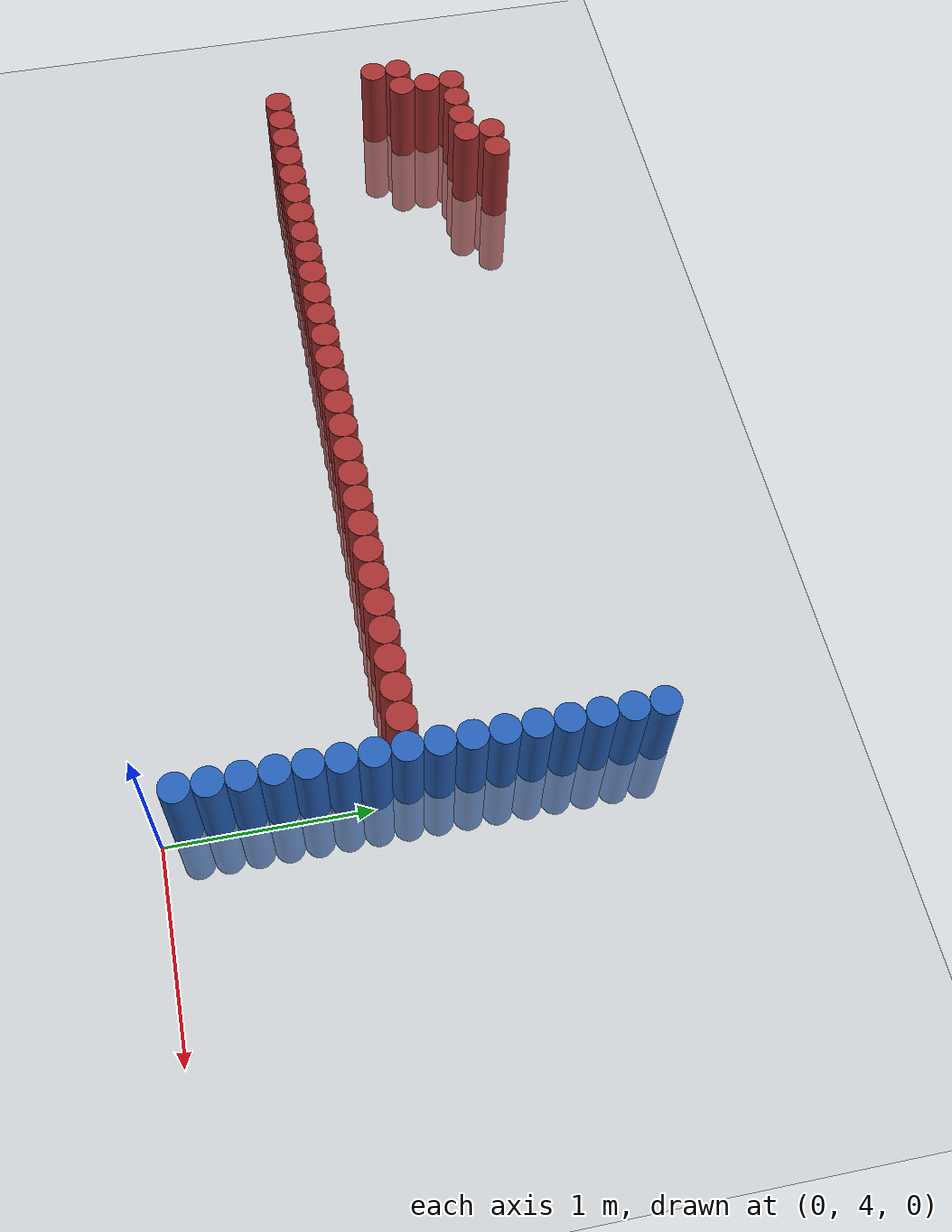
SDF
<sdf version="1.6">
 <world name="default">
  <model name="ground_plane">
   <static>1</static>
   <link name="link">
    <collision name="collision">
     <geometry><plane><normal>0 0 1</normal><size>100 100</size></plane></geometry>
     <surface><friction><ode><mu>100</mu><mu2>50</mu2></ode></friction></surface>
    </collision>
    <visual name="visual">
     <cast_shadows>0</cast_shadows>
     <geometry><plane><normal>0 0 1</normal><size>100 100</size></plane></geometry>
     <material>
      <script><uri>file://media/materials/scripts/gazebo.material</uri><name>Gazebo/Grey</name></script>
     </material>
    </visual>
   </link>
  </model>
  <model name="unit_cylinder_111">
   <static>1</static>
   <pose>-0.075000 4.125000 0.000000 0.000000 0.000000 0.000000</pose>
   <link name="link">
    <inertial>
     <mass>1</mass>
     <inertia><ixx>0.145833</ixx><ixy>0</ixy><ixz>0</ixz><iyy>0.145833</iyy><iyz>0</iyz><izz>0.125</izz></inertia>
    </inertial>
    <collision name="collision">
     <geometry><cylinder><radius>0.075000</radius><length>1</length></cylinder></geometry>
    </collision>
    <visual name="visual">
     <geometry><cylinder><radius>0.075000</radius><length>1</length></cylinder></geometry>
     <material>
      <ambient>0.152000 0.379000 0.720000 1</ambient>
      <diffuse>0.152000 0.379000 0.720000 1</diffuse>
     </material>
     <material>
      <script><name>Gazebo/Grey</name><uri>file://media/materials/scripts/gazebo.material</uri></script>
     </material>
    </visual>
   </link>
  </model>
  <model name="unit_cylinder_113">
   <static>1</static>
   <pose>-0.075000 4.275000 0.000000 0.000000 0.000000 0.000000</pose>
   <link name="link">
    <inertial>
     <mass>1</mass>
     <inertia><ixx>0.145833</ixx><ixy>0</ixy><ixz>0</ixz><iyy>0.145833</iyy><iyz>0</iyz><izz>0.125</izz></inertia>
    </inertial>
    <collision name="collision">
     <geometry><cylinder><radius>0.075000</radius><length>1</length></cylinder></geometry>
    </collision>
    <visual name="visual">
     <geometry><cylinder><radius>0.075000</radius><length>1</length></cylinder></geometry>
     <material>
      <ambient>0.152000 0.379000 0.720000 1</ambient>
      <diffuse>0.152000 0.379000 0.720000 1</diffuse>
     </material>
     <material>
      <script><name>Gazebo/Grey</name><uri>file://media/materials/scripts/gazebo.material</uri></script>
     </material>
    </visual>
   </link>
  </model>
  <model name="unit_cylinder_115">
   <static>1</static>
   <pose>-0.075000 4.425000 0.000000 0.000000 0.000000 0.000000</pose>
   <link name="link">
    <inertial>
     <mass>1</mass>
     <inertia><ixx>0.145833</ixx><ixy>0</ixy><ixz>0</ixz><iyy>0.145833</iyy><iyz>0</iyz><izz>0.125</izz></inertia>
    </inertial>
    <collision name="collision">
     <geometry><cylinder><radius>0.075000</radius><length>1</length></cylinder></geometry>
    </collision>
    <visual name="visual">
     <geometry><cylinder><radius>0.075000</radius><length>1</length></cylinder></geometry>
     <material>
      <ambient>0.152000 0.379000 0.720000 1</ambient>
      <diffuse>0.152000 0.379000 0.720000 1</diffuse>
     </material>
     <material>
      <script><name>Gazebo/Grey</name><uri>file://media/materials/scripts/gazebo.material</uri></script>
     </material>
    </visual>
   </link>
  </model>
  <model name="unit_cylinder_117">
   <static>1</static>
   <pose>-0.075000 4.575000 0.000000 0.000000 0.000000 0.000000</pose>
   <link name="link">
    <inertial>
     <mass>1</mass>
     <inertia><ixx>0.145833</ixx><ixy>0</ixy><ixz>0</ixz><iyy>0.145833</iyy><iyz>0</iyz><izz>0.125</izz></inertia>
    </inertial>
    <collision name="collision">
     <geometry><cylinder><radius>0.075000</radius><length>1</length></cylinder></geometry>
    </collision>
    <visual name="visual">
     <geometry><cylinder><radius>0.075000</radius><length>1</length></cylinder></geometry>
     <material>
      <ambient>0.152000 0.379000 0.720000 1</ambient>
      <diffuse>0.152000 0.379000 0.720000 1</diffuse>
     </material>
     <material>
      <script><name>Gazebo/Grey</name><uri>file://media/materials/scripts/gazebo.material</uri></script>
     </material>
    </visual>
   </link>
  </model>
  <model name="unit_cylinder_119">
   <static>1</static>
   <pose>-0.075000 4.725000 0.000000 0.000000 0.000000 0.000000</pose>
   <link name="link">
    <inertial>
     <mass>1</mass>
     <inertia><ixx>0.145833</ixx><ixy>0</ixy><ixz>0</ixz><iyy>0.145833</iyy><iyz>0</iyz><izz>0.125</izz></inertia>
    </inertial>
    <collision name="collision">
     <geometry><cylinder><radius>0.075000</radius><length>1</length></cylinder></geometry>
    </collision>
    <visual name="visual">
     <geometry><cylinder><radius>0.075000</radius><length>1</length></cylinder></geometry>
     <material>
      <ambient>0.152000 0.379000 0.720000 1</ambient>
      <diffuse>0.152000 0.379000 0.720000 1</diffuse>
     </material>
     <material>
      <script><name>Gazebo/Grey</name><uri>file://media/materials/scripts/gazebo.material</uri></script>
     </material>
    </visual>
   </link>
  </model>
  <model name="unit_cylinder_121">
   <static>1</static>
   <pose>-0.075000 4.875000 0.000000 0.000000 0.000000 0.000000</pose>
   <link name="link">
    <inertial>
     <mass>1</mass>
     <inertia><ixx>0.145833</ixx><ixy>0</ixy><ixz>0</ixz><iyy>0.145833</iyy><iyz>0</iyz><izz>0.125</izz></inertia>
    </inertial>
    <collision name="collision">
     <geometry><cylinder><radius>0.075000</radius><length>1</length></cylinder></geometry>
    </collision>
    <visual name="visual">
     <geometry><cylinder><radius>0.075000</radius><length>1</length></cylinder></geometry>
     <material>
      <ambient>0.152000 0.379000 0.720000 1</ambient>
      <diffuse>0.152000 0.379000 0.720000 1</diffuse>
     </material>
     <material>
      <script><name>Gazebo/Grey</name><uri>file://media/materials/scripts/gazebo.material</uri></script>
     </material>
    </visual>
   </link>
  </model>
  <model name="unit_cylinder_123">
   <static>1</static>
   <pose>-0.075000 5.025000 0.000000 0.000000 0.000000 0.000000</pose>
   <link name="link">
    <inertial>
     <mass>1</mass>
     <inertia><ixx>0.145833</ixx><ixy>0</ixy><ixz>0</ixz><iyy>0.145833</iyy><iyz>0</iyz><izz>0.125</izz></inertia>
    </inertial>
    <collision name="collision">
     <geometry><cylinder><radius>0.075000</radius><length>1</length></cylinder></geometry>
    </collision>
    <visual name="visual">
     <geometry><cylinder><radius>0.075000</radius><length>1</length></cylinder></geometry>
     <material>
      <ambient>0.152000 0.379000 0.720000 1</ambient>
      <diffuse>0.152000 0.379000 0.720000 1</diffuse>
     </material>
     <material>
      <script><name>Gazebo/Grey</name><uri>file://media/materials/scripts/gazebo.material</uri></script>
     </material>
    </visual>
   </link>
  </model>
  <model name="unit_cylinder_315">
   <static>1</static>
   <pose>-4.425000 5.775000 0.000000 0.000000 0.000000 0.000000</pose>
   <link name="link">
    <inertial>
     <mass>1</mass>
     <inertia><ixx>0.145833</ixx><ixy>0</ixy><ixz>0</ixz><iyy>0.145833</iyy><iyz>0</iyz><izz>0.125</izz></inertia>
    </inertial>
    <collision name="collision">
     <geometry><cylinder><radius>0.075000</radius><length>1</length></cylinder></geometry>
    </collision>
    <visual name="visual">
     <geometry><cylinder><radius>0.075000</radius><length>1</length></cylinder></geometry>
     <material>
      <ambient>0.648000 0.192000 0.192000 1</ambient>
      <diffuse>0.648000 0.192000 0.192000 1</diffuse>
     </material>
     <material>
      <script><name>Gazebo/Grey</name><uri>file://media/materials/scripts/gazebo.material</uri></script>
     </material>
    </visual>
   </link>
  </model>
  <model name="unit_cylinder_316">
   <static>1</static>
   <pose>-4.425000 5.925000 0.000000 0.000000 0.000000 0.000000</pose>
   <link name="link">
    <inertial>
     <mass>1</mass>
     <inertia><ixx>0.145833</ixx><ixy>0</ixy><ixz>0</ixz><iyy>0.145833</iyy><iyz>0</iyz><izz>0.125</izz></inertia>
    </inertial>
    <collision name="collision">
     <geometry><cylinder><radius>0.075000</radius><length>1</length></cylinder></geometry>
    </collision>
    <visual name="visual">
     <geometry><cylinder><radius>0.075000</radius><length>1</length></cylinder></geometry>
     <material>
      <ambient>0.648000 0.192000 0.192000 1</ambient>
      <diffuse>0.648000 0.192000 0.192000 1</diffuse>
     </material>
     <material>
      <script><name>Gazebo/Grey</name><uri>file://media/materials/scripts/gazebo.material</uri></script>
     </material>
    </visual>
   </link>
  </model>
  <model name="unit_cylinder_319">
   <static>1</static>
   <pose>-4.275000 5.175000 0.000000 0.000000 0.000000 0.000000</pose>
   <link name="link">
    <inertial>
     <mass>1</mass>
     <inertia><ixx>0.145833</ixx><ixy>0</ixy><ixz>0</ixz><iyy>0.145833</iyy><iyz>0</iyz><izz>0.125</izz></inertia>
    </inertial>
    <collision name="collision">
     <geometry><cylinder><radius>0.075000</radius><length>1</length></cylinder></geometry>
    </collision>
    <visual name="visual">
     <geometry><cylinder><radius>0.075000</radius><length>1</length></cylinder></geometry>
     <material>
      <ambient>0.648000 0.192000 0.192000 1</ambient>
      <diffuse>0.648000 0.192000 0.192000 1</diffuse>
     </material>
     <material>
      <script><name>Gazebo/Grey</name><uri>file://media/materials/scripts/gazebo.material</uri></script>
     </material>
    </visual>
   </link>
  </model>
  <model name="unit_cylinder_320">
   <static>1</static>
   <pose>-4.275000 5.925000 0.000000 0.000000 0.000000 0.000000</pose>
   <link name="link">
    <inertial>
     <mass>1</mass>
     <inertia><ixx>0.145833</ixx><ixy>0</ixy><ixz>0</ixz><iyy>0.145833</iyy><iyz>0</iyz><izz>0.125</izz></inertia>
    </inertial>
    <collision name="collision">
     <geometry><cylinder><radius>0.075000</radius><length>1</length></cylinder></geometry>
    </collision>
    <visual name="visual">
     <geometry><cylinder><radius>0.075000</radius><length>1</length></cylinder></geometry>
     <material>
      <ambient>0.648000 0.192000 0.192000 1</ambient>
      <diffuse>0.648000 0.192000 0.192000 1</diffuse>
     </material>
     <material>
      <script><name>Gazebo/Grey</name><uri>file://media/materials/scripts/gazebo.material</uri></script>
     </material>
    </visual>
   </link>
  </model>
  <model name="unit_cylinder_321">
   <static>1</static>
   <pose>-4.275000 6.075000 0.000000 0.000000 0.000000 0.000000</pose>
   <link name="link">
    <inertial>
     <mass>1</mass>
     <inertia><ixx>0.145833</ixx><ixy>0</ixy><ixz>0</ixz><iyy>0.145833</iyy><iyz>0</iyz><izz>0.125</izz></inertia>
    </inertial>
    <collision name="collision">
     <geometry><cylinder><radius>0.075000</radius><length>1</length></cylinder></geometry>
    </collision>
    <visual name="visual">
     <geometry><cylinder><radius>0.075000</radius><length>1</length></cylinder></geometry>
     <material>
      <ambient>0.648000 0.192000 0.192000 1</ambient>
      <diffuse>0.648000 0.192000 0.192000 1</diffuse>
     </material>
     <material>
      <script><name>Gazebo/Grey</name><uri>file://media/materials/scripts/gazebo.material</uri></script>
     </material>
    </visual>
   </link>
  </model>
  <model name="unit_cylinder_322">
   <static>1</static>
   <pose>-4.275000 6.225000 0.000000 0.000000 0.000000 0.000000</pose>
   <link name="link">
    <inertial>
     <mass>1</mass>
     <inertia><ixx>0.145833</ixx><ixy>0</ixy><ixz>0</ixz><iyy>0.145833</iyy><iyz>0</iyz><izz>0.125</izz></inertia>
    </inertial>
    <collision name="collision">
     <geometry><cylinder><radius>0.075000</radius><length>1</length></cylinder></geometry>
    </collision>
    <visual name="visual">
     <geometry><cylinder><radius>0.075000</radius><length>1</length></cylinder></geometry>
     <material>
      <ambient>0.648000 0.192000 0.192000 1</ambient>
      <diffuse>0.648000 0.192000 0.192000 1</diffuse>
     </material>
     <material>
      <script><name>Gazebo/Grey</name><uri>file://media/materials/scripts/gazebo.material</uri></script>
     </material>
    </visual>
   </link>
  </model>
  <model name="unit_cylinder_324">
   <static>1</static>
   <pose>-4.125000 5.175000 0.000000 0.000000 0.000000 0.000000</pose>
   <link name="link">
    <inertial>
     <mass>1</mass>
     <inertia><ixx>0.145833</ixx><ixy>0</ixy><ixz>0</ixz><iyy>0.145833</iyy><iyz>0</iyz><izz>0.125</izz></inertia>
    </inertial>
    <collision name="collision">
     <geometry><cylinder><radius>0.075000</radius><length>1</length></cylinder></geometry>
    </collision>
    <visual name="visual">
     <geometry><cylinder><radius>0.075000</radius><length>1</length></cylinder></geometry>
     <material>
      <ambient>0.648000 0.192000 0.192000 1</ambient>
      <diffuse>0.648000 0.192000 0.192000 1</diffuse>
     </material>
     <material>
      <script><name>Gazebo/Grey</name><uri>file://media/materials/scripts/gazebo.material</uri></script>
     </material>
    </visual>
   </link>
  </model>
  <model name="unit_cylinder_325">
   <static>1</static>
   <pose>-4.125000 6.225000 0.000000 0.000000 0.000000 0.000000</pose>
   <link name="link">
    <inertial>
     <mass>1</mass>
     <inertia><ixx>0.145833</ixx><ixy>0</ixy><ixz>0</ixz><iyy>0.145833</iyy><iyz>0</iyz><izz>0.125</izz></inertia>
    </inertial>
    <collision name="collision">
     <geometry><cylinder><radius>0.075000</radius><length>1</length></cylinder></geometry>
    </collision>
    <visual name="visual">
     <geometry><cylinder><radius>0.075000</radius><length>1</length></cylinder></geometry>
     <material>
      <ambient>0.648000 0.192000 0.192000 1</ambient>
      <diffuse>0.648000 0.192000 0.192000 1</diffuse>
     </material>
     <material>
      <script><name>Gazebo/Grey</name><uri>file://media/materials/scripts/gazebo.material</uri></script>
     </material>
    </visual>
   </link>
  </model>
  <model name="unit_cylinder_327">
   <static>1</static>
   <pose>-3.975000 5.175000 0.000000 0.000000 0.000000 0.000000</pose>
   <link name="link">
    <inertial>
     <mass>1</mass>
     <inertia><ixx>0.145833</ixx><ixy>0</ixy><ixz>0</ixz><iyy>0.145833</iyy><iyz>0</iyz><izz>0.125</izz></inertia>
    </inertial>
    <collision name="collision">
     <geometry><cylinder><radius>0.075000</radius><length>1</length></cylinder></geometry>
    </collision>
    <visual name="visual">
     <geometry><cylinder><radius>0.075000</radius><length>1</length></cylinder></geometry>
     <material>
      <ambient>0.648000 0.192000 0.192000 1</ambient>
      <diffuse>0.648000 0.192000 0.192000 1</diffuse>
     </material>
     <material>
      <script><name>Gazebo/Grey</name><uri>file://media/materials/scripts/gazebo.material</uri></script>
     </material>
    </visual>
   </link>
  </model>
  <model name="unit_cylinder_328">
   <static>1</static>
   <pose>-3.975000 6.225000 0.000000 0.000000 0.000000 0.000000</pose>
   <link name="link">
    <inertial>
     <mass>1</mass>
     <inertia><ixx>0.145833</ixx><ixy>0</ixy><ixz>0</ixz><iyy>0.145833</iyy><iyz>0</iyz><izz>0.125</izz></inertia>
    </inertial>
    <collision name="collision">
     <geometry><cylinder><radius>0.075000</radius><length>1</length></cylinder></geometry>
    </collision>
    <visual name="visual">
     <geometry><cylinder><radius>0.075000</radius><length>1</length></cylinder></geometry>
     <material>
      <ambient>0.648000 0.192000 0.192000 1</ambient>
      <diffuse>0.648000 0.192000 0.192000 1</diffuse>
     </material>
     <material>
      <script><name>Gazebo/Grey</name><uri>file://media/materials/scripts/gazebo.material</uri></script>
     </material>
    </visual>
   </link>
  </model>
  <model name="unit_cylinder_331">
   <static>1</static>
   <pose>-3.825000 5.175000 0.000000 0.000000 0.000000 0.000000</pose>
   <link name="link">
    <inertial>
     <mass>1</mass>
     <inertia><ixx>0.145833</ixx><ixy>0</ixy><ixz>0</ixz><iyy>0.145833</iyy><iyz>0</iyz><izz>0.125</izz></inertia>
    </inertial>
    <collision name="collision">
     <geometry><cylinder><radius>0.075000</radius><length>1</length></cylinder></geometry>
    </collision>
    <visual name="visual">
     <geometry><cylinder><radius>0.075000</radius><length>1</length></cylinder></geometry>
     <material>
      <ambient>0.648000 0.192000 0.192000 1</ambient>
      <diffuse>0.648000 0.192000 0.192000 1</diffuse>
     </material>
     <material>
      <script><name>Gazebo/Grey</name><uri>file://media/materials/scripts/gazebo.material</uri></script>
     </material>
    </visual>
   </link>
  </model>
  <model name="unit_cylinder_332">
   <static>1</static>
   <pose>-3.825000 6.225000 0.000000 0.000000 0.000000 0.000000</pose>
   <link name="link">
    <inertial>
     <mass>1</mass>
     <inertia><ixx>0.145833</ixx><ixy>0</ixy><ixz>0</ixz><iyy>0.145833</iyy><iyz>0</iyz><izz>0.125</izz></inertia>
    </inertial>
    <collision name="collision">
     <geometry><cylinder><radius>0.075000</radius><length>1</length></cylinder></geometry>
    </collision>
    <visual name="visual">
     <geometry><cylinder><radius>0.075000</radius><length>1</length></cylinder></geometry>
     <material>
      <ambient>0.648000 0.192000 0.192000 1</ambient>
      <diffuse>0.648000 0.192000 0.192000 1</diffuse>
     </material>
     <material>
      <script><name>Gazebo/Grey</name><uri>file://media/materials/scripts/gazebo.material</uri></script>
     </material>
    </visual>
   </link>
  </model>
  <model name="unit_cylinder_333">
   <static>1</static>
   <pose>-3.825000 6.375000 0.000000 0.000000 0.000000 0.000000</pose>
   <link name="link">
    <inertial>
     <mass>1</mass>
     <inertia><ixx>0.145833</ixx><ixy>0</ixy><ixz>0</ixz><iyy>0.145833</iyy><iyz>0</iyz><izz>0.125</izz></inertia>
    </inertial>
    <collision name="collision">
     <geometry><cylinder><radius>0.075000</radius><length>1</length></cylinder></geometry>
    </collision>
    <visual name="visual">
     <geometry><cylinder><radius>0.075000</radius><length>1</length></cylinder></geometry>
     <material>
      <ambient>0.648000 0.192000 0.192000 1</ambient>
      <diffuse>0.648000 0.192000 0.192000 1</diffuse>
     </material>
     <material>
      <script><name>Gazebo/Grey</name><uri>file://media/materials/scripts/gazebo.material</uri></script>
     </material>
    </visual>
   </link>
  </model>
  <model name="unit_cylinder_336">
   <static>1</static>
   <pose>-3.675000 5.175000 0.000000 0.000000 0.000000 0.000000</pose>
   <link name="link">
    <inertial>
     <mass>1</mass>
     <inertia><ixx>0.145833</ixx><ixy>0</ixy><ixz>0</ixz><iyy>0.145833</iyy><iyz>0</iyz><izz>0.125</izz></inertia>
    </inertial>
    <collision name="collision">
     <geometry><cylinder><radius>0.075000</radius><length>1</length></cylinder></geometry>
    </collision>
    <visual name="visual">
     <geometry><cylinder><radius>0.075000</radius><length>1</length></cylinder></geometry>
     <material>
      <ambient>0.648000 0.192000 0.192000 1</ambient>
      <diffuse>0.648000 0.192000 0.192000 1</diffuse>
     </material>
     <material>
      <script><name>Gazebo/Grey</name><uri>file://media/materials/scripts/gazebo.material</uri></script>
     </material>
    </visual>
   </link>
  </model>
  <model name="unit_cylinder_337">
   <static>1</static>
   <pose>-3.675000 6.375000 0.000000 0.000000 0.000000 0.000000</pose>
   <link name="link">
    <inertial>
     <mass>1</mass>
     <inertia><ixx>0.145833</ixx><ixy>0</ixy><ixz>0</ixz><iyy>0.145833</iyy><iyz>0</iyz><izz>0.125</izz></inertia>
    </inertial>
    <collision name="collision">
     <geometry><cylinder><radius>0.075000</radius><length>1</length></cylinder></geometry>
    </collision>
    <visual name="visual">
     <geometry><cylinder><radius>0.075000</radius><length>1</length></cylinder></geometry>
     <material>
      <ambient>0.648000 0.192000 0.192000 1</ambient>
      <diffuse>0.648000 0.192000 0.192000 1</diffuse>
     </material>
     <material>
      <script><name>Gazebo/Grey</name><uri>file://media/materials/scripts/gazebo.material</uri></script>
     </material>
    </visual>
   </link>
  </model>
  <model name="unit_cylinder_339">
   <static>1</static>
   <pose>-3.525000 5.175000 0.000000 0.000000 0.000000 0.000000</pose>
   <link name="link">
    <inertial>
     <mass>1</mass>
     <inertia><ixx>0.145833</ixx><ixy>0</ixy><ixz>0</ixz><iyy>0.145833</iyy><iyz>0</iyz><izz>0.125</izz></inertia>
    </inertial>
    <collision name="collision">
     <geometry><cylinder><radius>0.075000</radius><length>1</length></cylinder></geometry>
    </collision>
    <visual name="visual">
     <geometry><cylinder><radius>0.075000</radius><length>1</length></cylinder></geometry>
     <material>
      <ambient>0.648000 0.192000 0.192000 1</ambient>
      <diffuse>0.648000 0.192000 0.192000 1</diffuse>
     </material>
     <material>
      <script><name>Gazebo/Grey</name><uri>file://media/materials/scripts/gazebo.material</uri></script>
     </material>
    </visual>
   </link>
  </model>
  <model name="unit_cylinder_341">
   <static>1</static>
   <pose>-3.375000 5.175000 0.000000 0.000000 0.000000 0.000000</pose>
   <link name="link">
    <inertial>
     <mass>1</mass>
     <inertia><ixx>0.145833</ixx><ixy>0</ixy><ixz>0</ixz><iyy>0.145833</iyy><iyz>0</iyz><izz>0.125</izz></inertia>
    </inertial>
    <collision name="collision">
     <geometry><cylinder><radius>0.075000</radius><length>1</length></cylinder></geometry>
    </collision>
    <visual name="visual">
     <geometry><cylinder><radius>0.075000</radius><length>1</length></cylinder></geometry>
     <material>
      <ambient>0.648000 0.192000 0.192000 1</ambient>
      <diffuse>0.648000 0.192000 0.192000 1</diffuse>
     </material>
     <material>
      <script><name>Gazebo/Grey</name><uri>file://media/materials/scripts/gazebo.material</uri></script>
     </material>
    </visual>
   </link>
  </model>
  <model name="unit_cylinder_344">
   <static>1</static>
   <pose>-3.225000 5.175000 0.000000 0.000000 0.000000 0.000000</pose>
   <link name="link">
    <inertial>
     <mass>1</mass>
     <inertia><ixx>0.145833</ixx><ixy>0</ixy><ixz>0</ixz><iyy>0.145833</iyy><iyz>0</iyz><izz>0.125</izz></inertia>
    </inertial>
    <collision name="collision">
     <geometry><cylinder><radius>0.075000</radius><length>1</length></cylinder></geometry>
    </collision>
    <visual name="visual">
     <geometry><cylinder><radius>0.075000</radius><length>1</length></cylinder></geometry>
     <material>
      <ambient>0.648000 0.192000 0.192000 1</ambient>
      <diffuse>0.648000 0.192000 0.192000 1</diffuse>
     </material>
     <material>
      <script><name>Gazebo/Grey</name><uri>file://media/materials/scripts/gazebo.material</uri></script>
     </material>
    </visual>
   </link>
  </model>
  <model name="unit_cylinder_355">
   <static>1</static>
   <pose>-3.075000 5.175000 0.000000 0.000000 0.000000 0.000000</pose>
   <link name="link">
    <inertial>
     <mass>1</mass>
     <inertia><ixx>0.145833</ixx><ixy>0</ixy><ixz>0</ixz><iyy>0.145833</iyy><iyz>0</iyz><izz>0.125</izz></inertia>
    </inertial>
    <collision name="collision">
     <geometry><cylinder><radius>0.075000</radius><length>1</length></cylinder></geometry>
    </collision>
    <visual name="visual">
     <geometry><cylinder><radius>0.075000</radius><length>1</length></cylinder></geometry>
     <material>
      <ambient>0.648000 0.192000 0.192000 1</ambient>
      <diffuse>0.648000 0.192000 0.192000 1</diffuse>
     </material>
     <material>
      <script><name>Gazebo/Grey</name><uri>file://media/materials/scripts/gazebo.material</uri></script>
     </material>
    </visual>
   </link>
  </model>
  <model name="unit_cylinder_357">
   <static>1</static>
   <pose>-2.925000 5.175000 0.000000 0.000000 0.000000 0.000000</pose>
   <link name="link">
    <inertial>
     <mass>1</mass>
     <inertia><ixx>0.145833</ixx><ixy>0</ixy><ixz>0</ixz><iyy>0.145833</iyy><iyz>0</iyz><izz>0.125</izz></inertia>
    </inertial>
    <collision name="collision">
     <geometry><cylinder><radius>0.075000</radius><length>1</length></cylinder></geometry>
    </collision>
    <visual name="visual">
     <geometry><cylinder><radius>0.075000</radius><length>1</length></cylinder></geometry>
     <material>
      <ambient>0.648000 0.192000 0.192000 1</ambient>
      <diffuse>0.648000 0.192000 0.192000 1</diffuse>
     </material>
     <material>
      <script><name>Gazebo/Grey</name><uri>file://media/materials/scripts/gazebo.material</uri></script>
     </material>
    </visual>
   </link>
  </model>
  <model name="unit_cylinder_359">
   <static>1</static>
   <pose>-2.775000 5.175000 0.000000 0.000000 0.000000 0.000000</pose>
   <link name="link">
    <inertial>
     <mass>1</mass>
     <inertia><ixx>0.145833</ixx><ixy>0</ixy><ixz>0</ixz><iyy>0.145833</iyy><iyz>0</iyz><izz>0.125</izz></inertia>
    </inertial>
    <collision name="collision">
     <geometry><cylinder><radius>0.075000</radius><length>1</length></cylinder></geometry>
    </collision>
    <visual name="visual">
     <geometry><cylinder><radius>0.075000</radius><length>1</length></cylinder></geometry>
     <material>
      <ambient>0.648000 0.192000 0.192000 1</ambient>
      <diffuse>0.648000 0.192000 0.192000 1</diffuse>
     </material>
     <material>
      <script><name>Gazebo/Grey</name><uri>file://media/materials/scripts/gazebo.material</uri></script>
     </material>
    </visual>
   </link>
  </model>
  <model name="unit_cylinder_361">
   <static>1</static>
   <pose>-2.625000 5.175000 0.000000 0.000000 0.000000 0.000000</pose>
   <link name="link">
    <inertial>
     <mass>1</mass>
     <inertia><ixx>0.145833</ixx><ixy>0</ixy><ixz>0</ixz><iyy>0.145833</iyy><iyz>0</iyz><izz>0.125</izz></inertia>
    </inertial>
    <collision name="collision">
     <geometry><cylinder><radius>0.075000</radius><length>1</length></cylinder></geometry>
    </collision>
    <visual name="visual">
     <geometry><cylinder><radius>0.075000</radius><length>1</length></cylinder></geometry>
     <material>
      <ambient>0.648000 0.192000 0.192000 1</ambient>
      <diffuse>0.648000 0.192000 0.192000 1</diffuse>
     </material>
     <material>
      <script><name>Gazebo/Grey</name><uri>file://media/materials/scripts/gazebo.material</uri></script>
     </material>
    </visual>
   </link>
  </model>
  <model name="unit_cylinder_363">
   <static>1</static>
   <pose>-2.475000 5.175000 0.000000 0.000000 0.000000 0.000000</pose>
   <link name="link">
    <inertial>
     <mass>1</mass>
     <inertia><ixx>0.145833</ixx><ixy>0</ixy><ixz>0</ixz><iyy>0.145833</iyy><iyz>0</iyz><izz>0.125</izz></inertia>
    </inertial>
    <collision name="collision">
     <geometry><cylinder><radius>0.075000</radius><length>1</length></cylinder></geometry>
    </collision>
    <visual name="visual">
     <geometry><cylinder><radius>0.075000</radius><length>1</length></cylinder></geometry>
     <material>
      <ambient>0.648000 0.192000 0.192000 1</ambient>
      <diffuse>0.648000 0.192000 0.192000 1</diffuse>
     </material>
     <material>
      <script><name>Gazebo/Grey</name><uri>file://media/materials/scripts/gazebo.material</uri></script>
     </material>
    </visual>
   </link>
  </model>
  <model name="unit_cylinder_375">
   <static>1</static>
   <pose>-2.325000 5.175000 0.000000 0.000000 0.000000 0.000000</pose>
   <link name="link">
    <inertial>
     <mass>1</mass>
     <inertia><ixx>0.145833</ixx><ixy>0</ixy><ixz>0</ixz><iyy>0.145833</iyy><iyz>0</iyz><izz>0.125</izz></inertia>
    </inertial>
    <collision name="collision">
     <geometry><cylinder><radius>0.075000</radius><length>1</length></cylinder></geometry>
    </collision>
    <visual name="visual">
     <geometry><cylinder><radius>0.075000</radius><length>1</length></cylinder></geometry>
     <material>
      <ambient>0.648000 0.192000 0.192000 1</ambient>
      <diffuse>0.648000 0.192000 0.192000 1</diffuse>
     </material>
     <material>
      <script><name>Gazebo/Grey</name><uri>file://media/materials/scripts/gazebo.material</uri></script>
     </material>
    </visual>
   </link>
  </model>
  <model name="unit_cylinder_377">
   <static>1</static>
   <pose>-2.175000 5.175000 0.000000 0.000000 0.000000 0.000000</pose>
   <link name="link">
    <inertial>
     <mass>1</mass>
     <inertia><ixx>0.145833</ixx><ixy>0</ixy><ixz>0</ixz><iyy>0.145833</iyy><iyz>0</iyz><izz>0.125</izz></inertia>
    </inertial>
    <collision name="collision">
     <geometry><cylinder><radius>0.075000</radius><length>1</length></cylinder></geometry>
    </collision>
    <visual name="visual">
     <geometry><cylinder><radius>0.075000</radius><length>1</length></cylinder></geometry>
     <material>
      <ambient>0.648000 0.192000 0.192000 1</ambient>
      <diffuse>0.648000 0.192000 0.192000 1</diffuse>
     </material>
     <material>
      <script><name>Gazebo/Grey</name><uri>file://media/materials/scripts/gazebo.material</uri></script>
     </material>
    </visual>
   </link>
  </model>
  <model name="unit_cylinder_379">
   <static>1</static>
   <pose>-2.025000 5.175000 0.000000 0.000000 0.000000 0.000000</pose>
   <link name="link">
    <inertial>
     <mass>1</mass>
     <inertia><ixx>0.145833</ixx><ixy>0</ixy><ixz>0</ixz><iyy>0.145833</iyy><iyz>0</iyz><izz>0.125</izz></inertia>
    </inertial>
    <collision name="collision">
     <geometry><cylinder><radius>0.075000</radius><length>1</length></cylinder></geometry>
    </collision>
    <visual name="visual">
     <geometry><cylinder><radius>0.075000</radius><length>1</length></cylinder></geometry>
     <material>
      <ambient>0.648000 0.192000 0.192000 1</ambient>
      <diffuse>0.648000 0.192000 0.192000 1</diffuse>
     </material>
     <material>
      <script><name>Gazebo/Grey</name><uri>file://media/materials/scripts/gazebo.material</uri></script>
     </material>
    </visual>
   </link>
  </model>
  <model name="unit_cylinder_381">
   <static>1</static>
   <pose>-1.875000 5.175000 0.000000 0.000000 0.000000 0.000000</pose>
   <link name="link">
    <inertial>
     <mass>1</mass>
     <inertia><ixx>0.145833</ixx><ixy>0</ixy><ixz>0</ixz><iyy>0.145833</iyy><iyz>0</iyz><izz>0.125</izz></inertia>
    </inertial>
    <collision name="collision">
     <geometry><cylinder><radius>0.075000</radius><length>1</length></cylinder></geometry>
    </collision>
    <visual name="visual">
     <geometry><cylinder><radius>0.075000</radius><length>1</length></cylinder></geometry>
     <material>
      <ambient>0.648000 0.192000 0.192000 1</ambient>
      <diffuse>0.648000 0.192000 0.192000 1</diffuse>
     </material>
     <material>
      <script><name>Gazebo/Grey</name><uri>file://media/materials/scripts/gazebo.material</uri></script>
     </material>
    </visual>
   </link>
  </model>
  <model name="unit_cylinder_383">
   <static>1</static>
   <pose>-1.725000 5.175000 0.000000 0.000000 0.000000 0.000000</pose>
   <link name="link">
    <inertial>
     <mass>1</mass>
     <inertia><ixx>0.145833</ixx><ixy>0</ixy><ixz>0</ixz><iyy>0.145833</iyy><iyz>0</iyz><izz>0.125</izz></inertia>
    </inertial>
    <collision name="collision">
     <geometry><cylinder><radius>0.075000</radius><length>1</length></cylinder></geometry>
    </collision>
    <visual name="visual">
     <geometry><cylinder><radius>0.075000</radius><length>1</length></cylinder></geometry>
     <material>
      <ambient>0.648000 0.192000 0.192000 1</ambient>
      <diffuse>0.648000 0.192000 0.192000 1</diffuse>
     </material>
     <material>
      <script><name>Gazebo/Grey</name><uri>file://media/materials/scripts/gazebo.material</uri></script>
     </material>
    </visual>
   </link>
  </model>
  <model name="unit_cylinder_385">
   <static>1</static>
   <pose>-1.575000 5.175000 0.000000 0.000000 0.000000 0.000000</pose>
   <link name="link">
    <inertial>
     <mass>1</mass>
     <inertia><ixx>0.145833</ixx><ixy>0</ixy><ixz>0</ixz><iyy>0.145833</iyy><iyz>0</iyz><izz>0.125</izz></inertia>
    </inertial>
    <collision name="collision">
     <geometry><cylinder><radius>0.075000</radius><length>1</length></cylinder></geometry>
    </collision>
    <visual name="visual">
     <geometry><cylinder><radius>0.075000</radius><length>1</length></cylinder></geometry>
     <material>
      <ambient>0.648000 0.192000 0.192000 1</ambient>
      <diffuse>0.648000 0.192000 0.192000 1</diffuse>
     </material>
     <material>
      <script><name>Gazebo/Grey</name><uri>file://media/materials/scripts/gazebo.material</uri></script>
     </material>
    </visual>
   </link>
  </model>
  <model name="unit_cylinder_387">
   <static>1</static>
   <pose>-1.425000 5.175000 0.000000 0.000000 0.000000 0.000000</pose>
   <link name="link">
    <inertial>
     <mass>1</mass>
     <inertia><ixx>0.145833</ixx><ixy>0</ixy><ixz>0</ixz><iyy>0.145833</iyy><iyz>0</iyz><izz>0.125</izz></inertia>
    </inertial>
    <collision name="collision">
     <geometry><cylinder><radius>0.075000</radius><length>1</length></cylinder></geometry>
    </collision>
    <visual name="visual">
     <geometry><cylinder><radius>0.075000</radius><length>1</length></cylinder></geometry>
     <material>
      <ambient>0.648000 0.192000 0.192000 1</ambient>
      <diffuse>0.648000 0.192000 0.192000 1</diffuse>
     </material>
     <material>
      <script><name>Gazebo/Grey</name><uri>file://media/materials/scripts/gazebo.material</uri></script>
     </material>
    </visual>
   </link>
  </model>
  <model name="unit_cylinder_389">
   <static>1</static>
   <pose>-1.275000 5.175000 0.000000 0.000000 0.000000 0.000000</pose>
   <link name="link">
    <inertial>
     <mass>1</mass>
     <inertia><ixx>0.145833</ixx><ixy>0</ixy><ixz>0</ixz><iyy>0.145833</iyy><iyz>0</iyz><izz>0.125</izz></inertia>
    </inertial>
    <collision name="collision">
     <geometry><cylinder><radius>0.075000</radius><length>1</length></cylinder></geometry>
    </collision>
    <visual name="visual">
     <geometry><cylinder><radius>0.075000</radius><length>1</length></cylinder></geometry>
     <material>
      <ambient>0.648000 0.192000 0.192000 1</ambient>
      <diffuse>0.648000 0.192000 0.192000 1</diffuse>
     </material>
     <material>
      <script><name>Gazebo/Grey</name><uri>file://media/materials/scripts/gazebo.material</uri></script>
     </material>
    </visual>
   </link>
  </model>
  <model name="unit_cylinder_391">
   <static>1</static>
   <pose>-1.125000 5.175000 0.000000 0.000000 0.000000 0.000000</pose>
   <link name="link">
    <inertial>
     <mass>1</mass>
     <inertia><ixx>0.145833</ixx><ixy>0</ixy><ixz>0</ixz><iyy>0.145833</iyy><iyz>0</iyz><izz>0.125</izz></inertia>
    </inertial>
    <collision name="collision">
     <geometry><cylinder><radius>0.075000</radius><length>1</length></cylinder></geometry>
    </collision>
    <visual name="visual">
     <geometry><cylinder><radius>0.075000</radius><length>1</length></cylinder></geometry>
     <material>
      <ambient>0.648000 0.192000 0.192000 1</ambient>
      <diffuse>0.648000 0.192000 0.192000 1</diffuse>
     </material>
     <material>
      <script><name>Gazebo/Grey</name><uri>file://media/materials/scripts/gazebo.material</uri></script>
     </material>
    </visual>
   </link>
  </model>
  <model name="unit_cylinder_393">
   <static>1</static>
   <pose>-0.975000 5.175000 0.000000 0.000000 0.000000 0.000000</pose>
   <link name="link">
    <inertial>
     <mass>1</mass>
     <inertia><ixx>0.145833</ixx><ixy>0</ixy><ixz>0</ixz><iyy>0.145833</iyy><iyz>0</iyz><izz>0.125</izz></inertia>
    </inertial>
    <collision name="collision">
     <geometry><cylinder><radius>0.075000</radius><length>1</length></cylinder></geometry>
    </collision>
    <visual name="visual">
     <geometry><cylinder><radius>0.075000</radius><length>1</length></cylinder></geometry>
     <material>
      <ambient>0.648000 0.192000 0.192000 1</ambient>
      <diffuse>0.648000 0.192000 0.192000 1</diffuse>
     </material>
     <material>
      <script><name>Gazebo/Grey</name><uri>file://media/materials/scripts/gazebo.material</uri></script>
     </material>
    </visual>
   </link>
  </model>
  <model name="unit_cylinder_395">
   <static>1</static>
   <pose>-0.825000 5.175000 0.000000 0.000000 0.000000 0.000000</pose>
   <link name="link">
    <inertial>
     <mass>1</mass>
     <inertia><ixx>0.145833</ixx><ixy>0</ixy><ixz>0</ixz><iyy>0.145833</iyy><iyz>0</iyz><izz>0.125</izz></inertia>
    </inertial>
    <collision name="collision">
     <geometry><cylinder><radius>0.075000</radius><length>1</length></cylinder></geometry>
    </collision>
    <visual name="visual">
     <geometry><cylinder><radius>0.075000</radius><length>1</length></cylinder></geometry>
     <material>
      <ambient>0.648000 0.192000 0.192000 1</ambient>
      <diffuse>0.648000 0.192000 0.192000 1</diffuse>
     </material>
     <material>
      <script><name>Gazebo/Grey</name><uri>file://media/materials/scripts/gazebo.material</uri></script>
     </material>
    </visual>
   </link>
  </model>
  <model name="unit_cylinder_397">
   <static>1</static>
   <pose>-0.675000 5.175000 0.000000 0.000000 0.000000 0.000000</pose>
   <link name="link">
    <inertial>
     <mass>1</mass>
     <inertia><ixx>0.145833</ixx><ixy>0</ixy><ixz>0</ixz><iyy>0.145833</iyy><iyz>0</iyz><izz>0.125</izz></inertia>
    </inertial>
    <collision name="collision">
     <geometry><cylinder><radius>0.075000</radius><length>1</length></cylinder></geometry>
    </collision>
    <visual name="visual">
     <geometry><cylinder><radius>0.075000</radius><length>1</length></cylinder></geometry>
     <material>
      <ambient>0.648000 0.192000 0.192000 1</ambient>
      <diffuse>0.648000 0.192000 0.192000 1</diffuse>
     </material>
     <material>
      <script><name>Gazebo/Grey</name><uri>file://media/materials/scripts/gazebo.material</uri></script>
     </material>
    </visual>
   </link>
  </model>
  <model name="unit_cylinder_399">
   <static>1</static>
   <pose>-0.525000 5.175000 0.000000 0.000000 0.000000 0.000000</pose>
   <link name="link">
    <inertial>
     <mass>1</mass>
     <inertia><ixx>0.145833</ixx><ixy>0</ixy><ixz>0</ixz><iyy>0.145833</iyy><iyz>0</iyz><izz>0.125</izz></inertia>
    </inertial>
    <collision name="collision">
     <geometry><cylinder><radius>0.075000</radius><length>1</length></cylinder></geometry>
    </collision>
    <visual name="visual">
     <geometry><cylinder><radius>0.075000</radius><length>1</length></cylinder></geometry>
     <material>
      <ambient>0.648000 0.192000 0.192000 1</ambient>
      <diffuse>0.648000 0.192000 0.192000 1</diffuse>
     </material>
     <material>
      <script><name>Gazebo/Grey</name><uri>file://media/materials/scripts/gazebo.material</uri></script>
     </material>
    </visual>
   </link>
  </model>
  <model name="unit_cylinder_401">
   <static>1</static>
   <pose>-0.375000 5.175000 0.000000 0.000000 0.000000 0.000000</pose>
   <link name="link">
    <inertial>
     <mass>1</mass>
     <inertia><ixx>0.145833</ixx><ixy>0</ixy><ixz>0</ixz><iyy>0.145833</iyy><iyz>0</iyz><izz>0.125</izz></inertia>
    </inertial>
    <collision name="collision">
     <geometry><cylinder><radius>0.075000</radius><length>1</length></cylinder></geometry>
    </collision>
    <visual name="visual">
     <geometry><cylinder><radius>0.075000</radius><length>1</length></cylinder></geometry>
     <material>
      <ambient>0.648000 0.192000 0.192000 1</ambient>
      <diffuse>0.648000 0.192000 0.192000 1</diffuse>
     </material>
     <material>
      <script><name>Gazebo/Grey</name><uri>file://media/materials/scripts/gazebo.material</uri></script>
     </material>
    </visual>
   </link>
  </model>
  <model name="unit_cylinder_403">
   <static>1</static>
   <pose>-0.225000 5.175000 0.000000 0.000000 0.000000 0.000000</pose>
   <link name="link">
    <inertial>
     <mass>1</mass>
     <inertia><ixx>0.145833</ixx><ixy>0</ixy><ixz>0</ixz><iyy>0.145833</iyy><iyz>0</iyz><izz>0.125</izz></inertia>
    </inertial>
    <collision name="collision">
     <geometry><cylinder><radius>0.075000</radius><length>1</length></cylinder></geometry>
    </collision>
    <visual name="visual">
     <geometry><cylinder><radius>0.075000</radius><length>1</length></cylinder></geometry>
     <material>
      <ambient>0.648000 0.192000 0.192000 1</ambient>
      <diffuse>0.648000 0.192000 0.192000 1</diffuse>
     </material>
     <material>
      <script><name>Gazebo/Grey</name><uri>file://media/materials/scripts/gazebo.material</uri></script>
     </material>
    </visual>
   </link>
  </model>
  <model name="unit_cylinder_405">
   <static>1</static>
   <pose>-0.075000 5.175000 0.000000 0.000000 0.000000 0.000000</pose>
   <link name="link">
    <inertial>
     <mass>1</mass>
     <inertia><ixx>0.145833</ixx><ixy>0</ixy><ixz>0</ixz><iyy>0.145833</iyy><iyz>0</iyz><izz>0.125</izz></inertia>
    </inertial>
    <collision name="collision">
     <geometry><cylinder><radius>0.075000</radius><length>1</length></cylinder></geometry>
    </collision>
    <visual name="visual">
     <geometry><cylinder><radius>0.075000</radius><length>1</length></cylinder></geometry>
     <material>
      <ambient>0.152000 0.379000 0.720000 1</ambient>
      <diffuse>0.152000 0.379000 0.720000 1</diffuse>
     </material>
     <material>
      <script><name>Gazebo/Grey</name><uri>file://media/materials/scripts/gazebo.material</uri></script>
     </material>
    </visual>
   </link>
  </model>
  <model name="unit_cylinder_406">
   <static>1</static>
   <pose>-0.075000 5.325000 0.000000 0.000000 0.000000 0.000000</pose>
   <link name="link">
    <inertial>
     <mass>1</mass>
     <inertia><ixx>0.145833</ixx><ixy>0</ixy><ixz>0</ixz><iyy>0.145833</iyy><iyz>0</iyz><izz>0.125</izz></inertia>
    </inertial>
    <collision name="collision">
     <geometry><cylinder><radius>0.075000</radius><length>1</length></cylinder></geometry>
    </collision>
    <visual name="visual">
     <geometry><cylinder><radius>0.075000</radius><length>1</length></cylinder></geometry>
     <material>
      <ambient>0.152000 0.379000 0.720000 1</ambient>
      <diffuse>0.152000 0.379000 0.720000 1</diffuse>
     </material>
     <material>
      <script><name>Gazebo/Grey</name><uri>file://media/materials/scripts/gazebo.material</uri></script>
     </material>
    </visual>
   </link>
  </model>
  <model name="unit_cylinder_407">
   <static>1</static>
   <pose>-0.075000 5.475000 0.000000 0.000000 0.000000 0.000000</pose>
   <link name="link">
    <inertial>
     <mass>1</mass>
     <inertia><ixx>0.145833</ixx><ixy>0</ixy><ixz>0</ixz><iyy>0.145833</iyy><iyz>0</iyz><izz>0.125</izz></inertia>
    </inertial>
    <collision name="collision">
     <geometry><cylinder><radius>0.075000</radius><length>1</length></cylinder></geometry>
    </collision>
    <visual name="visual">
     <geometry><cylinder><radius>0.075000</radius><length>1</length></cylinder></geometry>
     <material>
      <ambient>0.152000 0.379000 0.720000 1</ambient>
      <diffuse>0.152000 0.379000 0.720000 1</diffuse>
     </material>
     <material>
      <script><name>Gazebo/Grey</name><uri>file://media/materials/scripts/gazebo.material</uri></script>
     </material>
    </visual>
   </link>
  </model>
  <model name="unit_cylinder_408">
   <static>1</static>
   <pose>-0.075000 5.625000 0.000000 0.000000 0.000000 0.000000</pose>
   <link name="link">
    <inertial>
     <mass>1</mass>
     <inertia><ixx>0.145833</ixx><ixy>0</ixy><ixz>0</ixz><iyy>0.145833</iyy><iyz>0</iyz><izz>0.125</izz></inertia>
    </inertial>
    <collision name="collision">
     <geometry><cylinder><radius>0.075000</radius><length>1</length></cylinder></geometry>
    </collision>
    <visual name="visual">
     <geometry><cylinder><radius>0.075000</radius><length>1</length></cylinder></geometry>
     <material>
      <ambient>0.152000 0.379000 0.720000 1</ambient>
      <diffuse>0.152000 0.379000 0.720000 1</diffuse>
     </material>
     <material>
      <script><name>Gazebo/Grey</name><uri>file://media/materials/scripts/gazebo.material</uri></script>
     </material>
    </visual>
   </link>
  </model>
  <model name="unit_cylinder_409">
   <static>1</static>
   <pose>-0.075000 5.775000 0.000000 0.000000 0.000000 0.000000</pose>
   <link name="link">
    <inertial>
     <mass>1</mass>
     <inertia><ixx>0.145833</ixx><ixy>0</ixy><ixz>0</ixz><iyy>0.145833</iyy><iyz>0</iyz><izz>0.125</izz></inertia>
    </inertial>
    <collision name="collision">
     <geometry><cylinder><radius>0.075000</radius><length>1</length></cylinder></geometry>
    </collision>
    <visual name="visual">
     <geometry><cylinder><radius>0.075000</radius><length>1</length></cylinder></geometry>
     <material>
      <ambient>0.152000 0.379000 0.720000 1</ambient>
      <diffuse>0.152000 0.379000 0.720000 1</diffuse>
     </material>
     <material>
      <script><name>Gazebo/Grey</name><uri>file://media/materials/scripts/gazebo.material</uri></script>
     </material>
    </visual>
   </link>
  </model>
  <model name="unit_cylinder_410">
   <static>1</static>
   <pose>-0.075000 5.925000 0.000000 0.000000 0.000000 0.000000</pose>
   <link name="link">
    <inertial>
     <mass>1</mass>
     <inertia><ixx>0.145833</ixx><ixy>0</ixy><ixz>0</ixz><iyy>0.145833</iyy><iyz>0</iyz><izz>0.125</izz></inertia>
    </inertial>
    <collision name="collision">
     <geometry><cylinder><radius>0.075000</radius><length>1</length></cylinder></geometry>
    </collision>
    <visual name="visual">
     <geometry><cylinder><radius>0.075000</radius><length>1</length></cylinder></geometry>
     <material>
      <ambient>0.152000 0.379000 0.720000 1</ambient>
      <diffuse>0.152000 0.379000 0.720000 1</diffuse>
     </material>
     <material>
      <script><name>Gazebo/Grey</name><uri>file://media/materials/scripts/gazebo.material</uri></script>
     </material>
    </visual>
   </link>
  </model>
  <model name="unit_cylinder_411">
   <static>1</static>
   <pose>-0.075000 6.075000 0.000000 0.000000 0.000000 0.000000</pose>
   <link name="link">
    <inertial>
     <mass>1</mass>
     <inertia><ixx>0.145833</ixx><ixy>0</ixy><ixz>0</ixz><iyy>0.145833</iyy><iyz>0</iyz><izz>0.125</izz></inertia>
    </inertial>
    <collision name="collision">
     <geometry><cylinder><radius>0.075000</radius><length>1</length></cylinder></geometry>
    </collision>
    <visual name="visual">
     <geometry><cylinder><radius>0.075000</radius><length>1</length></cylinder></geometry>
     <material>
      <ambient>0.152000 0.379000 0.720000 1</ambient>
      <diffuse>0.152000 0.379000 0.720000 1</diffuse>
     </material>
     <material>
      <script><name>Gazebo/Grey</name><uri>file://media/materials/scripts/gazebo.material</uri></script>
     </material>
    </visual>
   </link>
  </model>
  <model name="unit_cylinder_412">
   <static>1</static>
   <pose>-0.075000 6.225000 0.000000 0.000000 0.000000 0.000000</pose>
   <link name="link">
    <inertial>
     <mass>1</mass>
     <inertia><ixx>0.145833</ixx><ixy>0</ixy><ixz>0</ixz><iyy>0.145833</iyy><iyz>0</iyz><izz>0.125</izz></inertia>
    </inertial>
    <collision name="collision">
     <geometry><cylinder><radius>0.075000</radius><length>1</length></cylinder></geometry>
    </collision>
    <visual name="visual">
     <geometry><cylinder><radius>0.075000</radius><length>1</length></cylinder></geometry>
     <material>
      <ambient>0.152000 0.379000 0.720000 1</ambient>
      <diffuse>0.152000 0.379000 0.720000 1</diffuse>
     </material>
     <material>
      <script><name>Gazebo/Grey</name><uri>file://media/materials/scripts/gazebo.material</uri></script>
     </material>
    </visual>
   </link>
  </model>
  <model name="unit_cylinder_413">
   <static>1</static>
   <pose>-0.075000 6.375000 0.000000 0.000000 0.000000 0.000000</pose>
   <link name="link">
    <inertial>
     <mass>1</mass>
     <inertia><ixx>0.145833</ixx><ixy>0</ixy><ixz>0</ixz><iyy>0.145833</iyy><iyz>0</iyz><izz>0.125</izz></inertia>
    </inertial>
    <collision name="collision">
     <geometry><cylinder><radius>0.075000</radius><length>1</length></cylinder></geometry>
    </collision>
    <visual name="visual">
     <geometry><cylinder><radius>0.075000</radius><length>1</length></cylinder></geometry>
     <material>
      <ambient>0.152000 0.379000 0.720000 1</ambient>
      <diffuse>0.152000 0.379000 0.720000 1</diffuse>
     </material>
     <material>
      <script><name>Gazebo/Grey</name><uri>file://media/materials/scripts/gazebo.material</uri></script>
     </material>
    </visual>
   </link>
  </model>
 </world>
</sdf>
